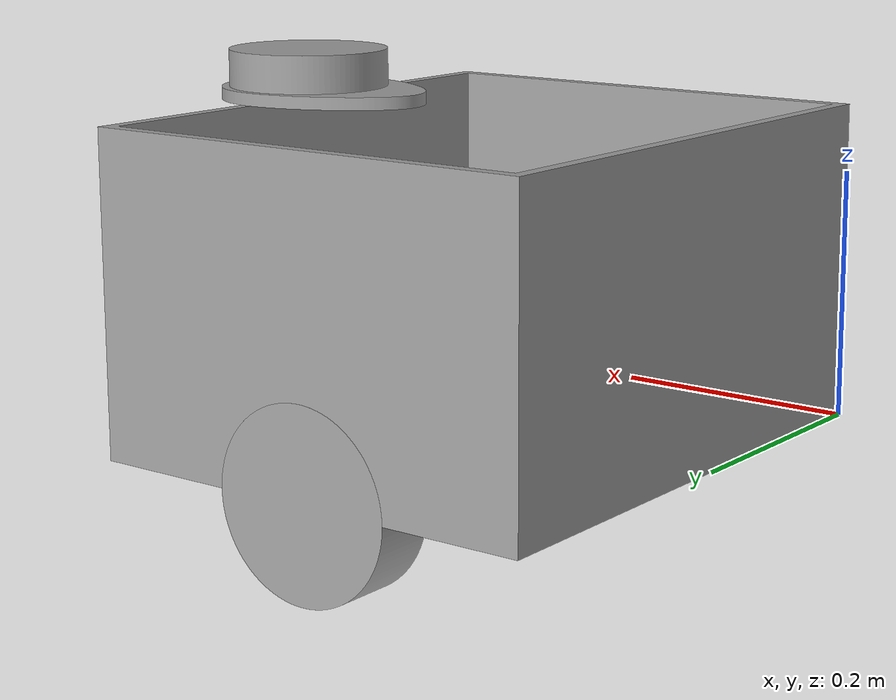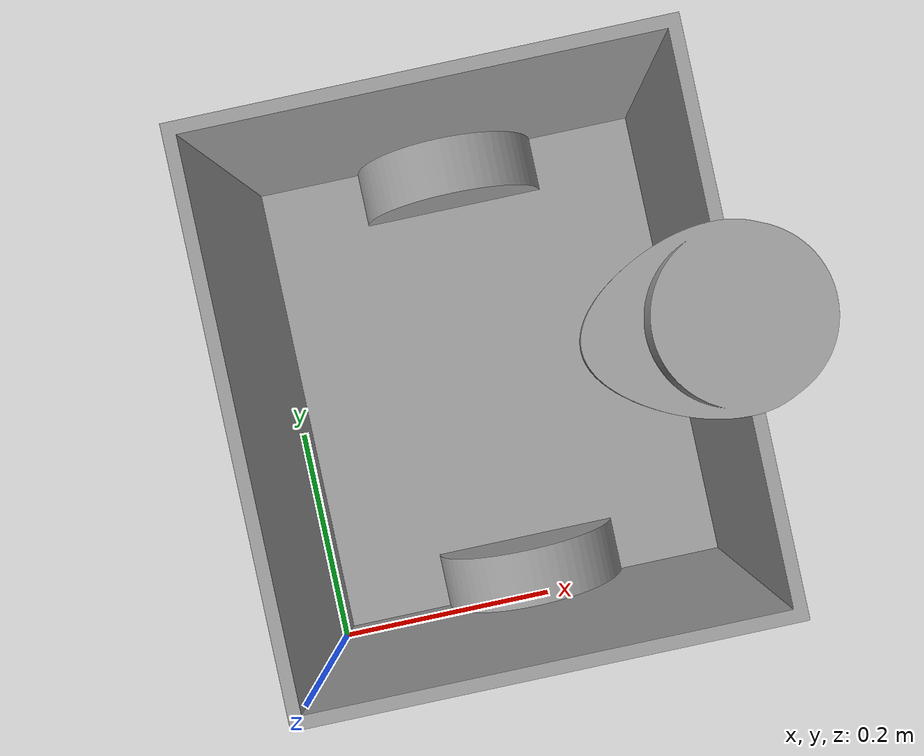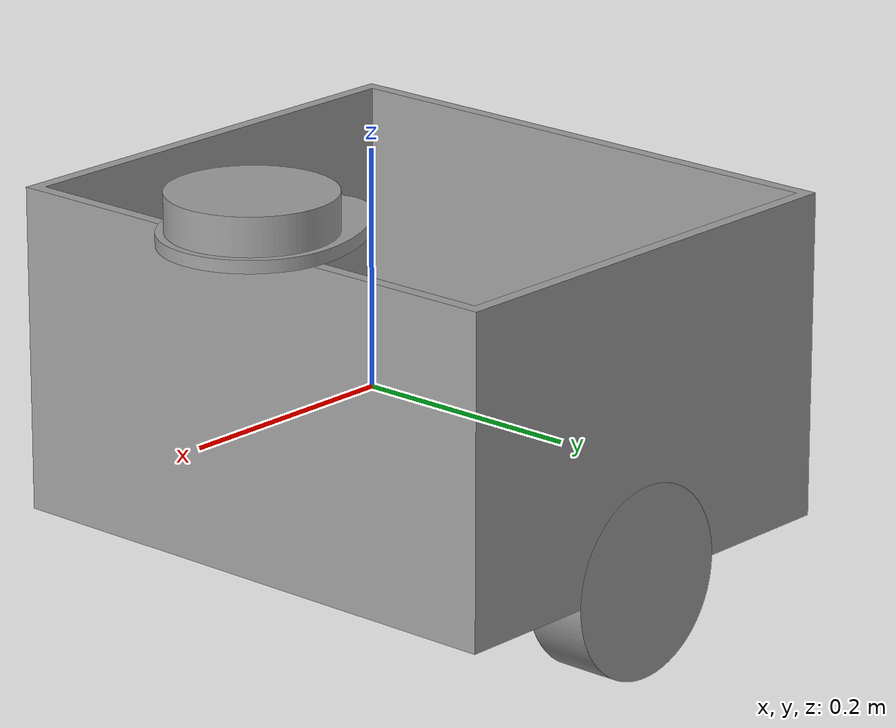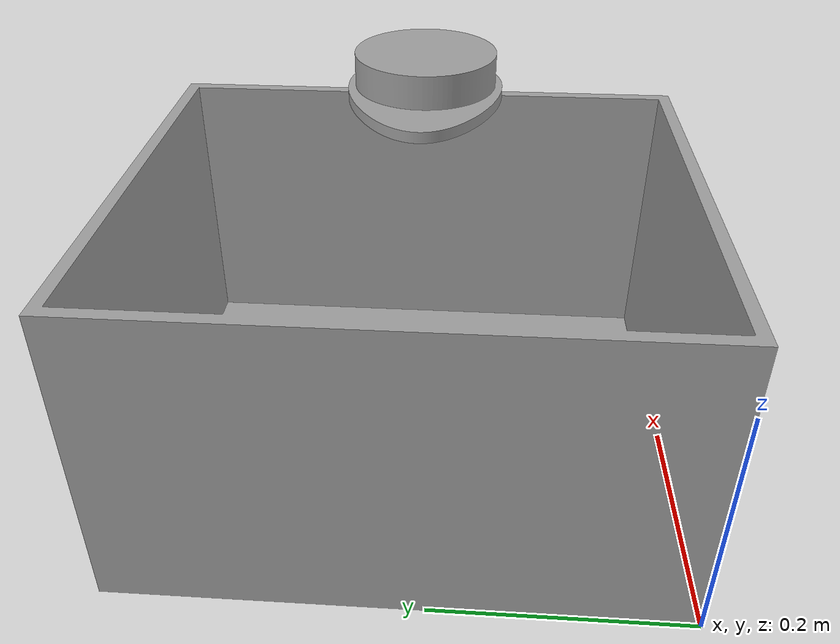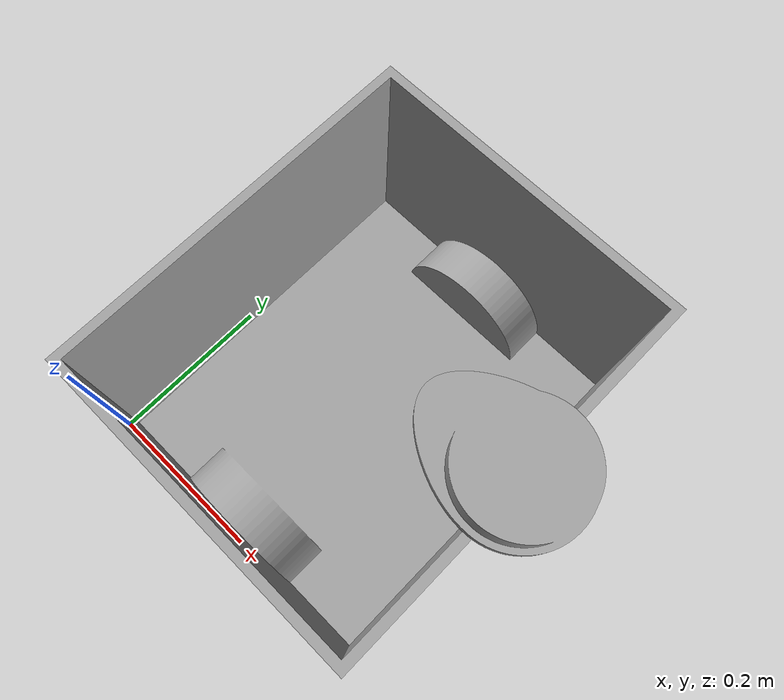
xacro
<?xml version="1.0"?>
<robot xmlns:xacro="http://www.ros.org/wiki/xacro" name="servicebot">

  <!-- Materials (shared across all assemblies) -->
  <material name="Steel">
    <color rgba="0.627 0.627 0.627 1.0"/>
  </material>

  <!-- Assembly includes -->
  <xacro:include filename="$(find servicebot_description)/urdf/assemblies/servicebot.urdf.xacro"/>

  <!-- Instantiate assemblies -->
  <xacro:servicebot prefix=""/>

</robot>

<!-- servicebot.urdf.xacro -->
<robot xmlns:xacro="http://www.ros.org/wiki/xacro" name="servicebot_macro">

  <xacro:macro name="servicebot" params="prefix">

    <!-- Links -->
    <link name="${prefix}base_link">
      <inertial>
        <origin xyz="0.190000 0.222500 0.094538" rpy="0 0 0"/>
        <mass value="44.753795"/>
        <inertia ixx="1.445927e+00" ixy="4.440892e-16" ixz="-3.330669e-16"
                 iyy="1.192469e+00" iyz="5.551115e-16" izz="2.044259e+00"/>
      </inertial>
      <visual>
        <origin xyz="0.000000 0.000000 0.000000" rpy="0 0 0"/>
        <geometry>
          <mesh filename="package://servicebot_description/meshes/servicebot/base_link.dae" scale="1 1 1"/>
        </geometry>
        <material name="Steel"/>
      </visual>
      <collision>
        <origin xyz="0.000000 0.000000 0.000000" rpy="0 0 0"/>
        <geometry>
          <mesh filename="package://servicebot_description/meshes/servicebot/base_link_collision.stl" scale="0.01 0.01 0.01"/>
        </geometry>
      </collision>
    </link>

    <link name="${prefix}servicebot_wheels">
      <inertial>
        <origin xyz="0.000000 0.025000 0.000000" rpy="0 0 0"/>
        <mass value="6.936048"/>
        <inertia ixx="1.119882e-02" ixy="2.498837e-18" ixz="-1.713488e-17"
                 iyy="1.950763e-02" iyz="4.640697e-18" izz="1.119883e-02"/>
      </inertial>
      <visual>
        <origin xyz="0.000000 0.000000 0.000000" rpy="0 0 0"/>
        <geometry>
          <mesh filename="package://servicebot_description/meshes/servicebot/servicebot_wheels.dae" scale="1 1 1"/>
        </geometry>
        <material name="Steel"/>
      </visual>
      <collision>
        <origin xyz="0.000000 0.000000 0.000000" rpy="0 0 0"/>
        <geometry>
          <mesh filename="package://servicebot_description/meshes/servicebot/servicebot_wheels_collision.stl" scale="0.01 0.01 0.01"/>
        </geometry>
      </collision>
    </link>

    <link name="${prefix}servicebot_wheels_2">
      <inertial>
        <origin xyz="0.000000 0.025000 0.000000" rpy="0 0 0"/>
        <mass value="6.936048"/>
        <inertia ixx="1.119882e-02" ixy="2.498837e-18" ixz="-1.713488e-17"
                 iyy="1.950763e-02" iyz="4.640697e-18" izz="1.119883e-02"/>
      </inertial>
      <visual>
        <origin xyz="0.000000 0.000000 0.000000" rpy="0 0 0"/>
        <geometry>
          <mesh filename="package://servicebot_description/meshes/servicebot/servicebot_wheels_2.dae" scale="1 1 1"/>
        </geometry>
        <material name="Steel"/>
      </visual>
      <collision>
        <origin xyz="0.000000 0.000000 0.000000" rpy="0 0 0"/>
        <geometry>
          <mesh filename="package://servicebot_description/meshes/servicebot/servicebot_wheels_2_collision.stl" scale="0.01 0.01 0.01"/>
        </geometry>
      </collision>
    </link>

    <link name="${prefix}lidar">
      <inertial>
        <origin xyz="-0.000000 -0.005155 0.018314" rpy="0 0 0"/>
        <mass value="4.523037"/>
        <inertia ixx="6.953012e-03" ixy="1.033764e-13" ixz="1.341999e-13"
                 iyy="5.509067e-03" iyz="-3.104390e-04" izz="1.117998e-02"/>
      </inertial>
      <visual>
        <origin xyz="0.000000 0.000000 0.000000" rpy="0 0 0"/>
        <geometry>
          <mesh filename="package://servicebot_description/meshes/servicebot/lidar.dae" scale="1 1 1"/>
        </geometry>
        <material name="Steel"/>
      </visual>
      <collision>
        <origin xyz="0.000000 0.000000 0.000000" rpy="0 0 0"/>
        <geometry>
          <mesh filename="package://servicebot_description/meshes/servicebot/lidar_collision.stl" scale="0.01 0.01 0.01"/>
        </geometry>
      </collision>
    </link>

    <!-- Joints (internal to assembly) -->
    <joint name="${prefix}Revolute_1" type="continuous">
      <parent link="${prefix}base_link"/>
      <child link="${prefix}servicebot_wheels"/>
      <origin xyz="0.190000 0.050000 0.000000" rpy="-3.141593 -0.000000 0.000000"/>
      <axis xyz="-0.000000 1.000000 -0.000000"/>
      <limit effort="100.0" velocity="1.00"/>
    </joint>

    <joint name="${prefix}Revolute_2" type="continuous">
      <parent link="${prefix}base_link"/>
      <child link="${prefix}servicebot_wheels_2"/>
      <origin xyz="0.190000 0.395000 0.000000" rpy="0.000000 -0.000000 -0.000000"/>
      <axis xyz="-0.000000 1.000000 0.000000"/>
      <limit effort="100.0" velocity="1.00"/>
    </joint>

    <joint name="${prefix}Rigid_3" type="fixed">
      <parent link="${prefix}base_link"/>
      <child link="${prefix}lidar"/>
      <origin xyz="0.370000 0.222500 0.254000" rpy="0.000000 0.000000 -1.570796"/>
    </joint>

    <!-- ROS 2 control: generated generic system -->
    <ros2_control name="${prefix}servicebot_system" type="system">
      <hardware>
        <plugin>mock_components/GenericSystem</plugin>
        <param name="cmd_topic">sim/servicebot_system/cmd</param>
        <param name="state_topic">sim/servicebot_system/state</param>
      </hardware>

      <joint name="${prefix}Revolute_1">
        <command_interface name="position"/>
        <command_interface name="velocity"/>
        <state_interface name="position">
          <param name="initial_value">0.0</param>
        </state_interface>
        <state_interface name="velocity"/>
        <state_interface name="effort"/>
      </joint>
      <joint name="${prefix}Revolute_2">
        <command_interface name="position"/>
        <command_interface name="velocity"/>
        <state_interface name="position">
          <param name="initial_value">0.0</param>
        </state_interface>
        <state_interface name="velocity"/>
        <state_interface name="effort"/>
      </joint>
    </ros2_control>

  </xacro:macro>

</robot>
